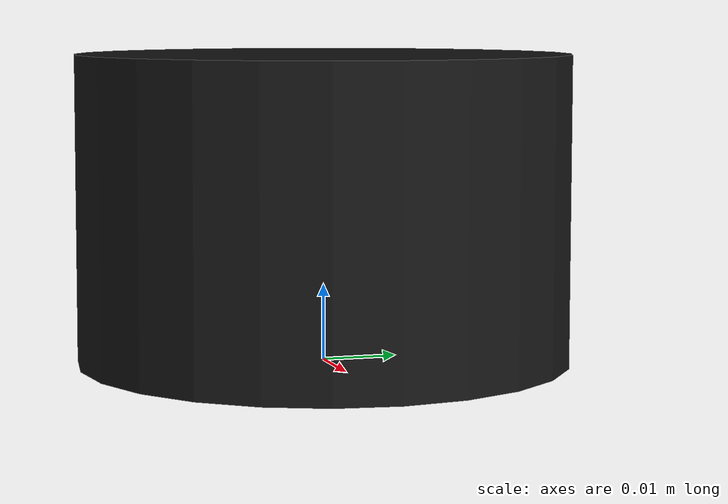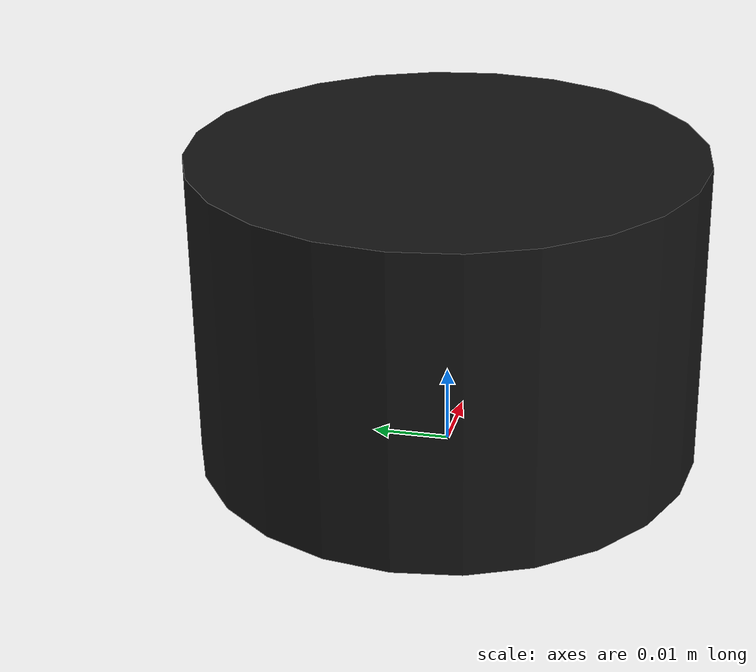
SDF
<?xml version="1.0" encoding="UTF-8"?>
<sdf version="1.9">
  <model name="rplidar_s2">
    <pose>0 0 0 0 0 0</pose>
    <self_collide>false</self_collide>
    <static>false</static>

    <link name="rplidar_s2/base_link">

      <inertial>
        <pose>0 0 0.0202 0 0 0</pose>
        <mass>0.135</mass>
        <inertia>
          <ixx>0.00005401</ixx>
          <ixy>0</ixy>
          <ixz>0</ixz>
          <iyy>0.00005401</iyy>
          <iyz>0</iyz>
          <izz>0.00007130</izz>
        </inertia>
      </inertial>

      <visual name="rplidar_s2_visual">
        <pose>0 0 0.0202 0 0 0</pose>
        <geometry>
          <cylinder>
            <radius>0.0325</radius>
            <length>0.0404</length>
          </cylinder>
        </geometry>
        <material>
          <ambient>0.05 0.05 0.05 1</ambient>
          <diffuse>0.08 0.08 0.08 1</diffuse>
          <specular>0.2 0.2 0.2 1</specular>
        </material>
      </visual>

      <collision name="rplidar_s2_collision">
        <pose>0 0 0.0202 0 0 0</pose>
        <geometry>
          <cylinder>
            <radius>0.0325</radius>
            <length>0.0404</length>
          </cylinder>
        </geometry>
      </collision>

      <sensor name="rplidar_s2_sensor" type="gpu_lidar">
        <pose>0 0 0.0404 0 0 0</pose>
        <topic>scan</topic>
        <gz_frame_id>rplidar_frame</gz_frame_id>
        <update_rate>10</update_rate>
        <always_on>true</always_on>
        <visualize>true</visualize>
        <lidar>
          <scan>
            <horizontal>
              <samples>2400</samples>
              <resolution>1</resolution>
              <min_angle>-3.141592653589793</min_angle>
              <max_angle>3.141592653589793</max_angle>
            </horizontal>
            <vertical>
              <samples>1</samples>
              <resolution>1</resolution>
              <min_angle>0</min_angle>
              <max_angle>0</max_angle>
            </vertical>
          </scan>
          <range>
            <min>0.05</min>
            <max>30.0</max>
            <resolution>0.01</resolution>
          </range>
          <noise>
            <type>gaussian</type>
            <mean>0.0</mean>
            <stddev>0.01</stddev>
          </noise>
        </lidar>
      </sensor>

      <gravity>true</gravity>
      <velocity_decay/>

    </link>
  </model>
</sdf>
